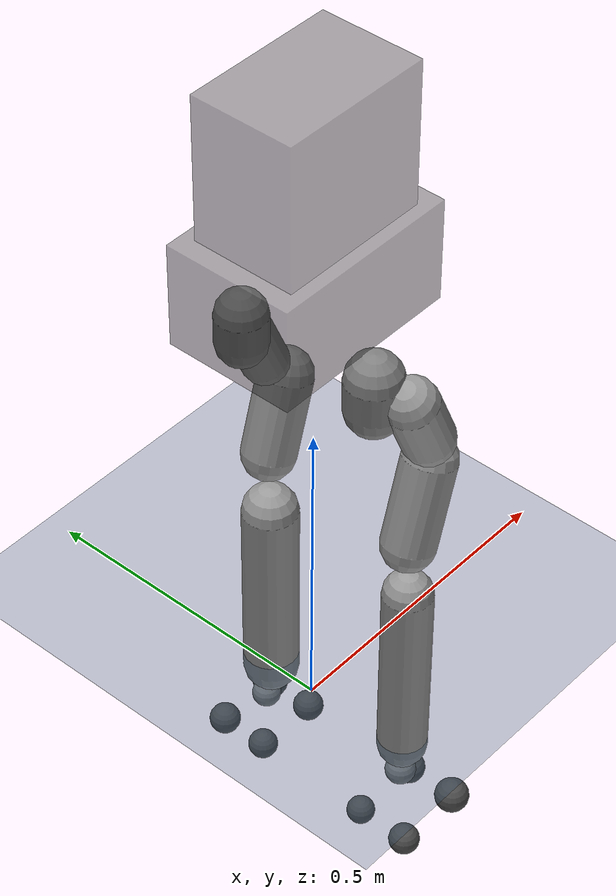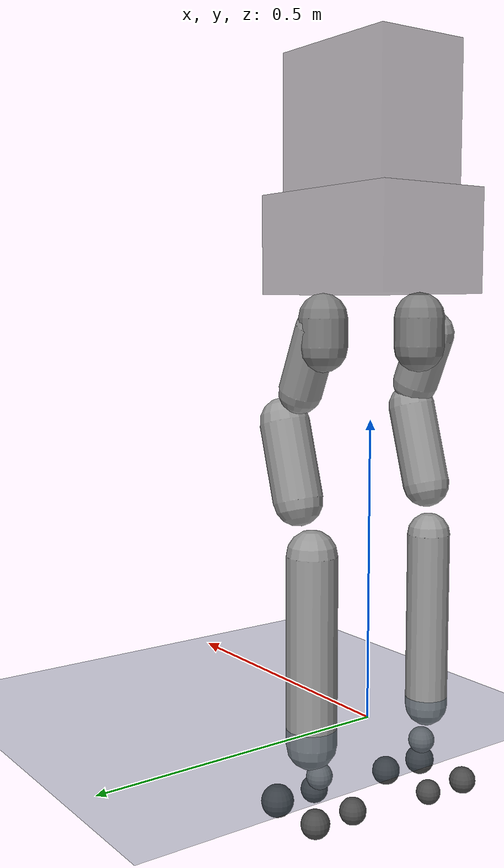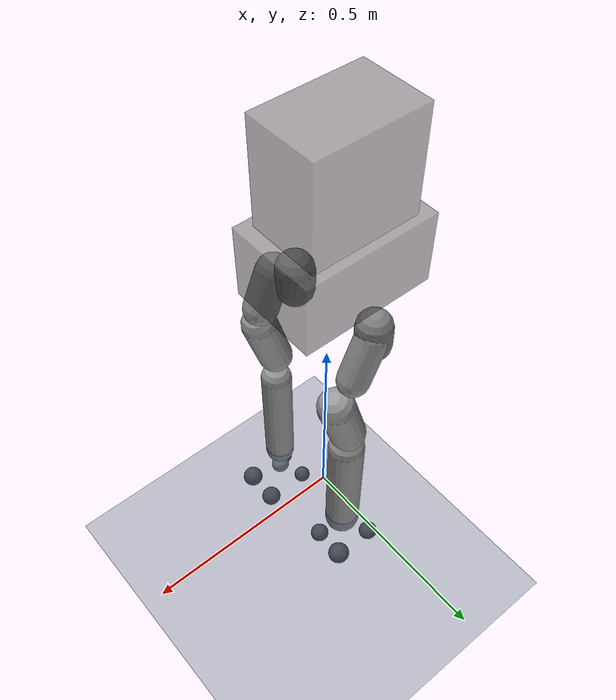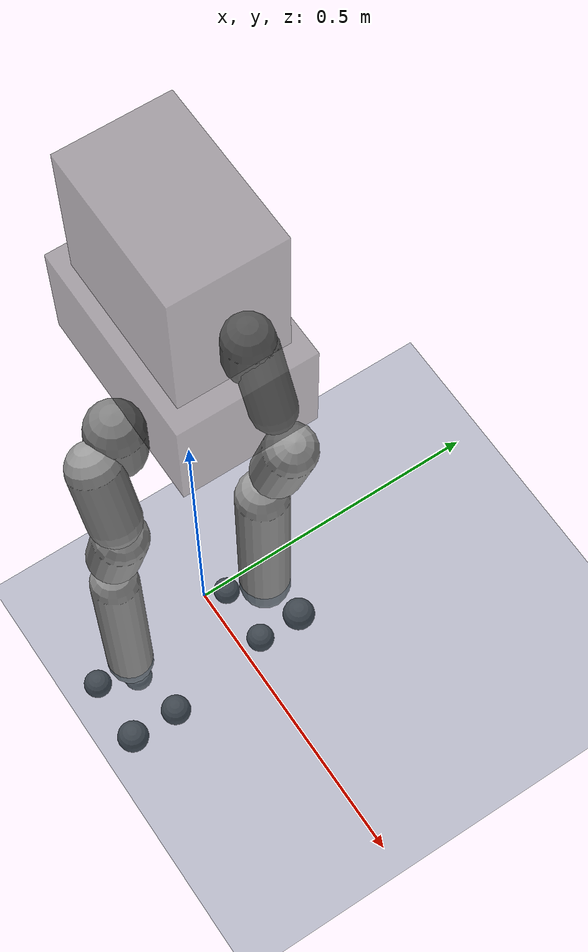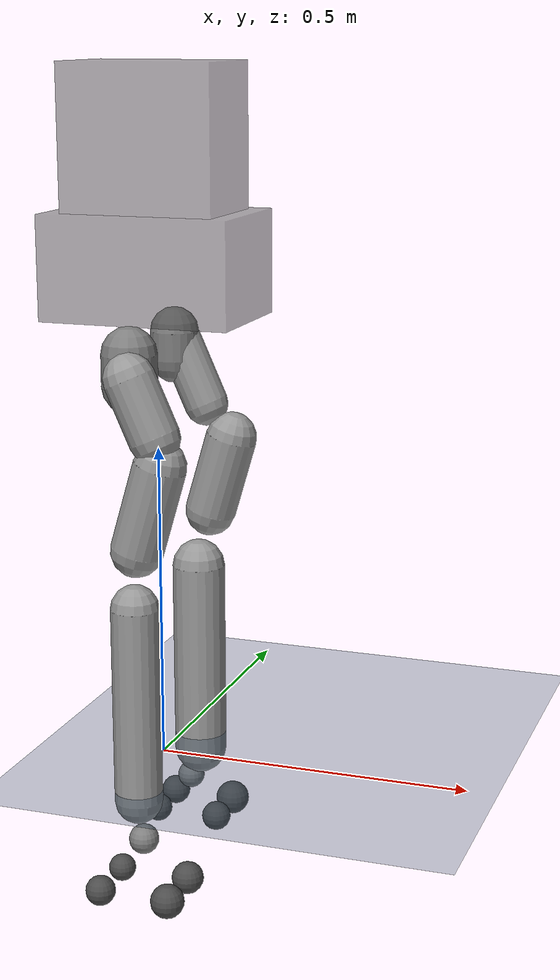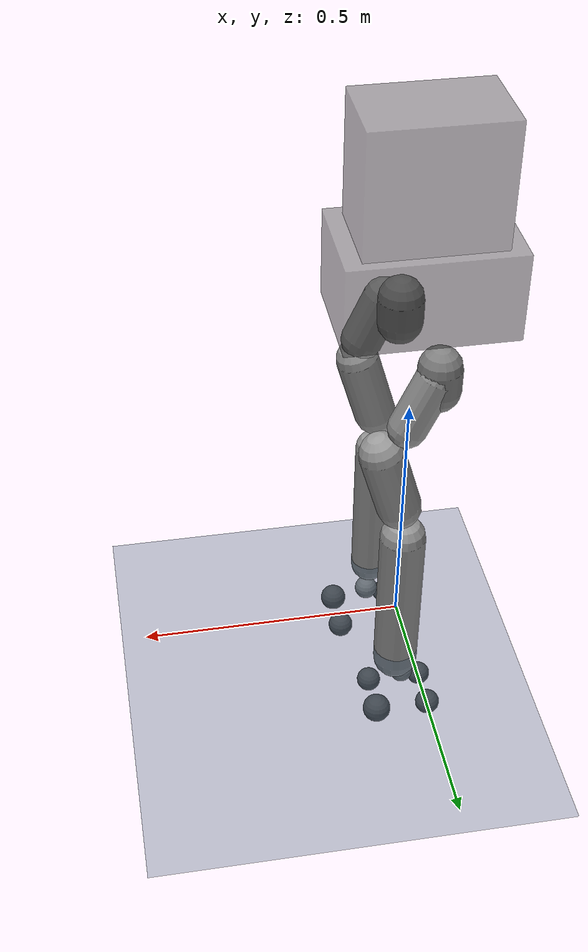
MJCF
<?xml version='1.0' encoding='UTF-8'?>
<mujoco model="g1_12dof">
  <compiler angle="degree" />
  <option timestep="0.002" integrator="RK4" />
  <default>
    <joint damping="1.96" armature="0.01" frictionloss="0.183" limited="true" />
    <geom conaffinity="1" condim="3" contype="1" friction="0.96 0.23 0.20" />
    <motor ctrllimited="true" ctrlrange="-1 1" />
  </default>
  <asset>
    <texture type="skybox" builtin="gradient" rgb1="0.3 0.5 0.7" rgb2="0.0 0.0 0.0" width="512" height="512" />
    <texture name="texplane" type="2d" builtin="checker" rgb1="0.2 0.3 0.4" rgb2="0.1 0.2 0.3" width="512" height="512" mark="cross" markrgb="1 1 1" />
    <material name="matplane" reflectance="0.3" texture="texplane" texrepeat="1 1" texuniform="true" />
  </asset>
  <worldbody>
    <light cutoff="100" diffuse="1 1 1" dir="-1 0 -1.5" directional="true" exponent="1" pos="0 0 1.3" specular="0.1 0.1 0.1" />
    <geom name="floor" pos="0 0 0" size="40 40 0.125" type="plane" material="matplane" condim="3" />
    <body name="pelvis" pos="-0.003350 0.010311 0.782154">
      <inertial pos="0.0144905 0.000151462 0.144068" quat="0.999881 -0.000505543 -0.0154276 0.000328408" mass="38.954161" diaginertia="1.57812363 1.29651438 0.60461862" />
      <freejoint name="root" />
      <geom name="pelvis_geom" type="box" size="0.15 0.1 0.08" pos="0 0 0" rgba="0.3 0.3 0.3 0.5" />
      <geom name="torso_geom" type="box" size="0.12 0.08 0.15" pos="0 0 0.15" rgba="0.3 0.3 0.3 0.5" />
      <body name="left_hip_pitch_link" pos="-0.013635 0.068246 -0.106492">
        <inertial pos="0.002741 0.047791 -0.02606" quat="0.954862 0.293964 0.0302556 0.030122" mass="2.411288" diaginertia="0.00393373 0.00332487 0.00251848" />
        <joint name="left_hip_pitch_joint" pos="0 0 0" axis="0 1 0" range="-144.9 166.7" damping="2.52" armature="0.01" frictionloss="0.275" />
        <geom name="left_hip_pitch_geom" type="capsule" fromto="0.000000 0.033537 -0.011179 0.000000 0.033537 -0.055895" size="0.038369" rgba="0.5 0.5 0.5 1" />
        <body name="left_hip_roll_link" pos="0.006421 0.038352 -0.026934" quat="0.996179 0 -0.0873386 0">
          <inertial pos="0.029812 -0.001045 -0.087934" quat="0.977808 -1.97119e-05 0.205576 -0.0403793" mass="2.624814" diaginertia="0.00528270 0.00499645 0.00308185" />
          <joint name="left_hip_roll_joint" pos="0 0 0" axis="1 0 0" range="-28.3 173.4" damping="2.38" armature="0.01" frictionloss="0.225" />
          <geom name="left_hip_roll_geom" type="capsule" fromto="0.000000 0.000000 0.000000 0.026428 0.000000 -0.105712" size="0.034920" rgba="0.6 0.6 0.6 1" />
          <body name="left_hip_yaw_link" pos="0.059019 -0.000246 -0.163671">
            <inertial pos="-0.057709 -0.010981 -0.15078" quat="0.600598 0.15832 0.223482 0.751181" mass="3.491338" diaginertia="0.02023008 0.01870296 0.00417388" />
            <joint name="left_hip_yaw_joint" pos="0 0 0" axis="0 0 1" range="-160.6 154.9" damping="1.62" armature="0.01" frictionloss="0.253" />
            <geom name="left_hip_yaw_geom" type="capsule" fromto="0.000000 0.000000 0.000000 -0.057632 0.000000 -0.115264" size="0.040505" rgba="0.6 0.6 0.6 1" />
            <body name="left_knee_link" pos="-0.088425 -0.016143 -0.200147" quat="0.996179 0 0.0873386 0">
              <inertial pos="0.005457 0.003964 -0.12074" quat="0.923418 -0.0327699 0.0158246 0.382067" mass="4.288014" diaginertia="0.03294754 0.03265050 0.00424012" />
              <joint name="left_knee_joint" pos="0 0 0" axis="0 1 0" range="-1.1 166.3" damping="2.36" armature="0.01" frictionloss="0.119" />
              <geom name="left_knee_geom" type="capsule" fromto="0.000000 0.000000 0.000000 0.000000 0.000000 -0.314887" size="0.042150" rgba="0.6 0.6 0.6 1" />
              <body name="left_ankle_pitch_link" pos="-0.016054 -0.004403 -0.365448">
                <inertial pos="-0.007269 0 0.011137" quat="0.603053 0.369225 0.369225 0.603053" mass="0.142310" diaginertia="0.00004520 0.00003367 0.00001655" />
                <joint name="left_ankle_pitch_joint" pos="0 0 0" axis="0 1 0" range="-49.1 30.6" damping="2.59" armature="0.005" frictionloss="0.103" />
                <geom name="left_ankle_pitch_geom" type="sphere" size="0.021796" pos="0.000000 0.000000 0.000000" rgba="0.5 0.5 0.5 1" />
                <body name="left_ankle_roll_link" pos="-0.007352 0.005012 -0.013661">
                  <inertial pos="0.026505 0 -0.016425" quat="-0.000481092 0.728482 -0.000618967 0.685065" mass="1.508305" diaginertia="0.00561561 0.00542728 0.00073083" />
                  <joint name="left_ankle_roll_joint" pos="0 0 0" axis="1 0 0" range="-13.0 13.2" damping="1.74" armature="0.005" frictionloss="0.131" />
                  <geom name="left_foot_1" type="sphere" size="0.027224" pos="0.064165 0.038499 -0.038499" rgba="0.3 0.3 0.3 1" />
                  <geom name="left_foot_2" type="sphere" size="0.023230" pos="0.064165 -0.038499 -0.038499" rgba="0.3 0.3 0.3 1" />
                  <geom name="left_foot_3" type="sphere" size="0.023618" pos="-0.038499 0.038499 -0.038499" rgba="0.3 0.3 0.3 1" />
                  <geom name="left_foot_4" type="sphere" size="0.022283" pos="-0.038499 -0.038499 -0.038499" rgba="0.3 0.3 0.3 1" />
                </body>
              </body>
            </body>
          </body>
        </body>
      </body>
      <body name="right_hip_pitch_link" pos="0.002787 -0.078161 -0.106025">
        <inertial pos="0.002741 -0.047791 -0.02606" quat="0.954862 -0.293964 0.0302556 -0.030122" mass="2.949520" diaginertia="0.00514605 0.00434955 0.00329464" />
        <joint name="right_hip_pitch_joint" pos="0 0 0" axis="0 1 0" range="-146.1 169.3" damping="2.54" armature="0.01" frictionloss="0.211" />
        <geom name="right_hip_pitch_geom" type="capsule" fromto="0.000000 -0.035643 -0.011881 0.000000 -0.035643 -0.059406" size="0.042096" rgba="0.5 0.5 0.5 1" />
        <body name="right_hip_roll_link" pos="0.019594 -0.082032 -0.038954" quat="0.996179 0 -0.0873386 0">
          <inertial pos="0.029812 0.001045 -0.087934" quat="0.977808 1.97119e-05 0.205576 0.0403793" mass="3.011016" diaginertia="0.00634370 0.00599995 0.00370082" />
          <joint name="right_hip_roll_joint" pos="0 0 0" axis="1 0 0" range="-174.6 28.0" damping="2.76" armature="0.01" frictionloss="0.171" />
          <geom name="right_hip_roll_geom" type="capsule" fromto="0.000000 0.000000 0.000000 0.022553 0.000000 -0.090211" size="0.038939" rgba="0.6 0.6 0.6 1" />
          <body name="right_hip_yaw_link" pos="0.022671 0.001207 -0.132480">
            <inertial pos="-0.057709 0.010981 -0.15078" quat="0.751181 0.223482 0.15832 0.600598" mass="3.220384" diaginertia="0.01816430 0.01679312 0.00374767" />
            <joint name="right_hip_yaw_joint" pos="0 0 0" axis="0 0 1" range="-153.0 156.6" damping="2.10" armature="0.01" frictionloss="0.241" />
            <geom name="right_hip_yaw_geom" type="capsule" fromto="0.000000 0.000000 0.000000 -0.061463 0.000000 -0.122926" size="0.039899" rgba="0.6 0.6 0.6 1" />
            <body name="right_knee_link" pos="-0.080131 -0.005344 -0.209874" quat="0.996179 0 0.0873386 0">
              <inertial pos="0.005457 -0.003964 -0.12074" quat="0.923439 0.0345276 0.0116333 -0.382012" mass="3.561020" diaginertia="0.02570413 0.02550142 0.00330967" />
              <joint name="right_knee_joint" pos="0 0 0" axis="0 1 0" range="-3.1 161.5" damping="2.64" armature="0.01" frictionloss="0.219" />
              <geom name="right_knee_geom" type="capsule" fromto="0.000000 0.000000 0.000000 0.000000 0.000000 -0.306937" size="0.036996" rgba="0.6 0.6 0.6 1" />
              <body name="right_ankle_pitch_link" pos="0.004997 0.004866 -0.373976">
                <inertial pos="-0.007269 0 0.011137" quat="0.603053 0.369225 0.369225 0.603053" mass="0.164950" diaginertia="0.00005503 0.00004100 0.00002015" />
                <joint name="right_ankle_pitch_joint" pos="0 0 0" axis="0 1 0" range="-51.6 30.1" damping="2.10" armature="0.005" frictionloss="0.148" />
                <geom name="right_ankle_pitch_geom" type="sphere" size="0.023147" pos="0.000000 0.000000 0.000000" rgba="0.5 0.5 0.5 1" />
                <body name="right_ankle_roll_link" pos="-0.009973 -0.011000 -0.029124">
                  <inertial pos="0.026505 0 -0.016425" quat="0.000481092 0.728482 0.000618967 0.685065" mass="1.178652" diaginertia="0.00404196 0.00390641 0.00052603" />
                  <joint name="right_ankle_roll_joint" pos="0 0 0" axis="1 0 0" range="-18.7 13.2" damping="2.50" armature="0.005" frictionloss="0.121" />
                  <geom name="right_foot_1" type="sphere" size="0.025018" pos="0.069162 0.041497 -0.041497" rgba="0.3 0.3 0.3 1" />
                  <geom name="right_foot_2" type="sphere" size="0.026240" pos="0.069162 -0.041497 -0.041497" rgba="0.3 0.3 0.3 1" />
                  <geom name="right_foot_3" type="sphere" size="0.021156" pos="-0.041497 0.041497 -0.041497" rgba="0.3 0.3 0.3 1" />
                  <geom name="right_foot_4" type="sphere" size="0.023173" pos="-0.041497 -0.041497 -0.041497" rgba="0.3 0.3 0.3 1" />
                </body>
              </body>
            </body>
          </body>
        </body>
      </body>
    </body>
  </worldbody>
  <actuator>
    <motor name="left_hip_pitch_joint" joint="left_hip_pitch_joint" gear="134.8" />
    <motor name="left_hip_roll_joint" joint="left_hip_roll_joint" gear="263.1" />
    <motor name="left_hip_yaw_joint" joint="left_hip_yaw_joint" gear="123.2" />
    <motor name="left_knee_joint" joint="left_knee_joint" gear="220.5" />
    <motor name="left_ankle_pitch_joint" joint="left_ankle_pitch_joint" gear="99.4" />
    <motor name="left_ankle_roll_joint" joint="left_ankle_roll_joint" gear="80.8" />
    <motor name="right_hip_pitch_joint" joint="right_hip_pitch_joint" gear="148.7" />
    <motor name="right_hip_roll_joint" joint="right_hip_roll_joint" gear="180.2" />
    <motor name="right_hip_yaw_joint" joint="right_hip_yaw_joint" gear="163.8" />
    <motor name="right_knee_joint" joint="right_knee_joint" gear="233.9" />
    <motor name="right_ankle_pitch_joint" joint="right_ankle_pitch_joint" gear="81.8" />
    <motor name="right_ankle_roll_joint" joint="right_ankle_roll_joint" gear="73.7" />
  </actuator>
</mujoco>
